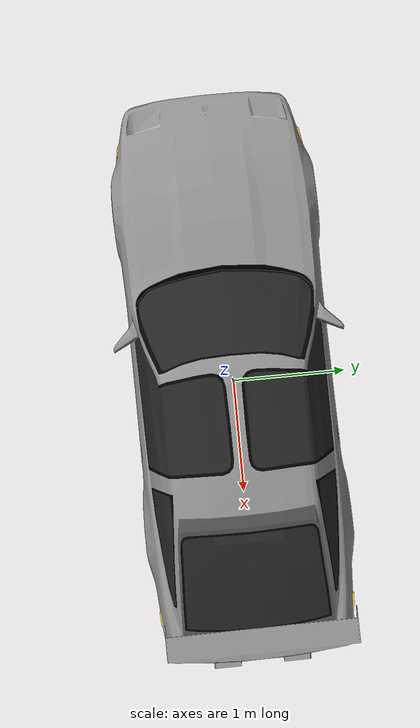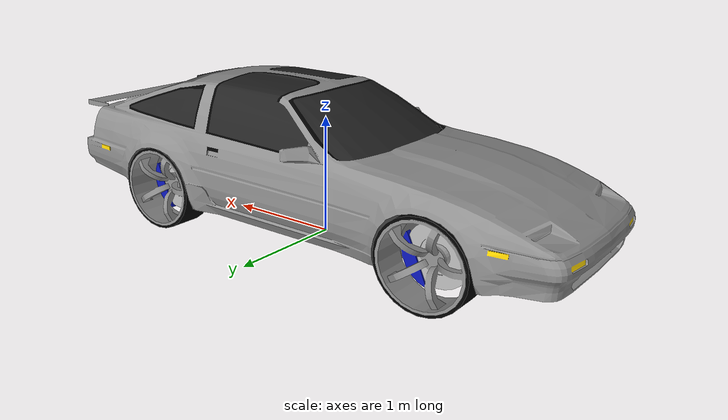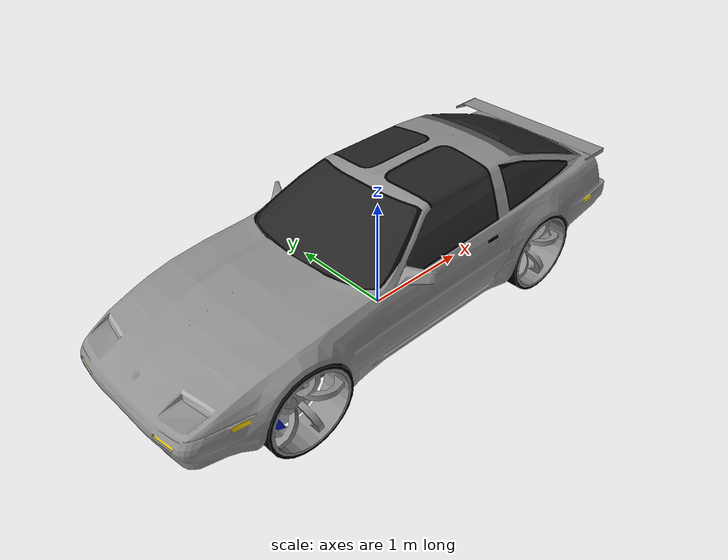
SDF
<?xml version="1.0" ?>
<sdf version="1.5">
  <model name="car_gray_2">
    <link name="link">
      <pose>0 0 0 0 0 0</pose>
      <collision name="collision">
        <geometry>
          <mesh>
            <uri>model://car_gray_2/meshes/model.dae</uri>
          </mesh>
        </geometry>
      </collision>
      <visual name="visual">
        <geometry>
          <mesh>
            <uri>model://car_gray_2/meshes/model.dae</uri>
          </mesh>
        </geometry>
      </visual>
    </link>
    <static>1</static>
  </model>
</sdf>
